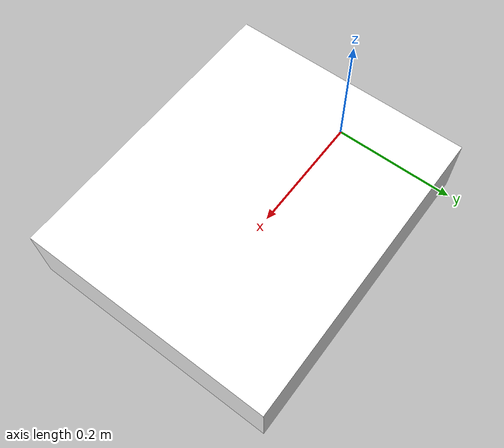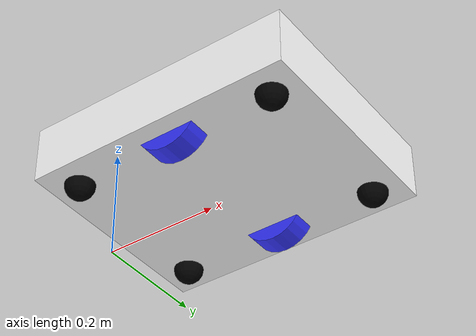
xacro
<?xml version="1.0"?>
<robot xmlns:xacro="http://www.ros.org/wiki/xacro" >

  <xacro:include filename="inertial_macros.xacro" />

  <!-- ═══════════ MATERIALS ═══════════ -->
  <material name="white">
    <color rgba="1 1 1 1"/>
  </material>
  <material name="orange">
    <color rgba="1 0.3 0.1 1"/>
  </material>
  <material name="blue">
    <color rgba="0.2 0.2 1 1"/>
  </material>
  <material name="black">
    <color rgba="0 0 0 1"/>
  </material>
  <material name="gray">
    <color rgba="0.5 0.5 0.5 1"/>
  </material>

  <!-- ═══════════ BASE LINK ═══════════ -->
  <!--
    Placed at rear-center of robot, at ground level.
    All other links are positioned relative to this origin.
  -->
  <link name="base_link"/>

  <!-- ═══════════ CHASSIS ═══════════ -->
  <!--
    460 mm × 380 mm × 100 mm box.
    Joint offsets chassis center to (L/2, 0, H/2) = (0.23, 0, 0.05) from base_link.
  -->
  <joint name="chassis_joint" type="fixed">
    <parent link="base_link"/>
    <child  link="chassis"/>
    <origin xyz="0.23 0 0.0765"/>
  </joint>

  <link name="chassis">
    <visual>
      <origin xyz="0 0 0"/>
      <geometry>
        <!-- 460 mm L × 380 mm W × 100 mm H -->
        <box size="0.46 0.38 0.10"/>
      </geometry>
      <material name="white"/>
    </visual>
    <collision>
      <origin xyz="0 0 0"/>
      <geometry>
        <box size="0.46 0.38 0.10"/>
      </geometry>
    </collision>
    <xacro:inertial_box mass="0.9" x="0.46" y="0.38" z="0.10">
      <origin xyz="0 0 0" rpy="0 0 0"/>
    </xacro:inertial_box>
  </link>

  <gazebo reference="chassis">
    <material>Gazebo/White</material>

    <mu1>1.0</mu1>
    <mu2>1.0</mu2>

    <kp>1000000.0</kp>
    <kd>100.0</kd>
  </gazebo>

  <!-- ═══════════ LEFT DRIVE WHEEL ═══════════ -->
  <joint name="left_wheel_joint" type="continuous">
    <parent link="base_link"/>
    <child  link="left_wheel"/>
    <origin xyz="0.2335 0.14 0.0565" rpy="${-pi/2} 0 0"/>
    <axis xyz="0 0 1"/>
  </joint>

  <link name="left_wheel">
    <visual>
      <origin xyz="0 0 0"/>
      <geometry>
        <!-- radius 56.5 mm, length (thickness) 40 mm -->
        <cylinder radius="0.0565" length="0.04"/>
      </geometry>
      <material name="blue"/>
    </visual>
    <collision>
      <origin xyz="0 0 0"/>
      <geometry>
        <cylinder radius="0.0565" length="0.04"/>
      </geometry>
    </collision>
    <xacro:inertial_cylinder mass="0.1" length="0.04" radius="0.0565">
      <origin xyz="0 0 0" rpy="0 0 0"/>
    </xacro:inertial_cylinder>
  </link>

  <gazebo reference="left_wheel">
    <material>Gazebo/Blue</material>

    <mu1>10.0</mu1>
    <mu2>10.0</mu2>

    <kp>1000000.0</kp>
    <kd>100.0</kd>

    <fdir1>1 0 0</fdir1>
  </gazebo>

  <!-- ═══════════ RIGHT DRIVE WHEEL ═══════════ -->
  <!--
    Mirror of left wheel: y = −0.14
    Roll +π/2 keeps the spin direction consistent (axis xyz="0 0 1" gives
    the same forward-driving sense for both wheels).
  -->
  <joint name="right_wheel_joint" type="continuous">
    <parent link="base_link"/>
    <child  link="right_wheel"/>
    <origin xyz="0.2335 -0.14 0.0565" rpy="${pi/2} 0 0"/>
    <axis xyz="0 0 -1"/>
  </joint>

  <link name="right_wheel">
    <visual>
      <origin xyz="0 0 0"/>
      <geometry>
        <cylinder radius="0.0565" length="0.04"/>
      </geometry>
      <material name="blue"/>
    </visual>
    <collision>
      <origin xyz="0 0 0"/>
      <geometry>
        <cylinder radius="0.0565" length="0.04"/>
      </geometry>
    </collision>
    <xacro:inertial_cylinder mass="0.1" length="0.04" radius="0.0565">
      <origin xyz="0 0 0" rpy="0 0 0"/>
    </xacro:inertial_cylinder>
  </link>

  <gazebo reference="right_wheel">
    <material>Gazebo/Blue</material>

    <mu1>10.0</mu1>
    <mu2>10.0</mu2>

    <kp>1000000.0</kp>
    <kd>100.0</kd>

    <fdir1>1 0 0</fdir1>
  </gazebo>

  <!-- ═══════════ CASTER WHEELS (4 CORNERS) ═══════════ -->
  <!-- x = ±0.18 (half-length 0.23 − 5cm inset)
       y = ±0.14 (half-width 0.19 − 5cm inset)
       z = -0.075 (chassis bottom -0.05 minus radius 0.025, so caster bottom touches ground) -->

  <joint name="caster_front_left_joint" type="fixed">
    <parent link="chassis"/>
    <child  link="caster_front_left"/>
    <origin xyz="0.18 0.14 -0.0515"/>

  </joint>
  <link name="caster_front_left">
    <visual><geometry><sphere radius="0.025"/></geometry><material name="black"/></visual>
    <collision><geometry><sphere radius="0.025"/></geometry></collision>
    <xacro:inertial_sphere mass="0.05" radius="0.025">
      <origin xyz="0 0 0" rpy="0 0 0"/>
    </xacro:inertial_sphere>
  </link>

  <gazebo reference="caster_front_left">
    <material>Gazebo/Black</material>
    <mu1>0.001</mu1>
    <mu2>0.001</mu2>
  </gazebo>

  <joint name="caster_front_right_joint" type="fixed">
    <parent link="chassis"/>
    <child  link="caster_front_right"/>
    <origin xyz="0.18 -0.14 -0.0515"/>
  </joint>
  <link name="caster_front_right">
    <visual><geometry><sphere radius="0.025"/></geometry><material name="black"/></visual>
    <collision><geometry><sphere radius="0.025"/></geometry></collision>
    <xacro:inertial_sphere mass="0.05" radius="0.025">
      <origin xyz="0 0 0" rpy="0 0 0"/>
    </xacro:inertial_sphere>
  </link>

  <gazebo reference="caster_front_right">
    <material>Gazebo/Black</material>
    <mu1>0.001</mu1>
    <mu2>0.001</mu2>
  </gazebo>

  <joint name="caster_rear_left_joint" type="fixed">
    <parent link="chassis"/>
    <child  link="caster_rear_left"/>
    <origin xyz="-0.18 0.14 -0.0515"/>
  </joint>
  <link name="caster_rear_left">
    <visual><geometry><sphere radius="0.025"/></geometry><material name="black"/></visual>
    <collision><geometry><sphere radius="0.025"/></geometry></collision>
    <xacro:inertial_sphere mass="0.05" radius="0.025">
      <origin xyz="0 0 0" rpy="0 0 0"/>
    </xacro:inertial_sphere>
  </link>

  <gazebo reference="caster_rear_left">
    <material>Gazebo/Black</material>
    <mu1>0.001</mu1>
    <mu2>0.001</mu2>
  </gazebo>

  <joint name="caster_rear_right_joint" type="fixed">
    <parent link="chassis"/>
    <child  link="caster_rear_right"/>
    <origin xyz="-0.18 -0.14 -0.0515"/>
  </joint>
  <link name="caster_rear_right">
    <visual><geometry><sphere radius="0.025"/></geometry><material name="black"/></visual>
    <collision><geometry><sphere radius="0.025"/></geometry></collision>
    <xacro:inertial_sphere mass="0.05" radius="0.025">
      <origin xyz="0 0 0" rpy="0 0 0"/>
    </xacro:inertial_sphere>
  </link>

  <gazebo reference="caster_rear_right">
    <material>Gazebo/Black</material>
    <mu1>0.001</mu1>
    <mu2>0.001</mu2>
  </gazebo>

</robot>
